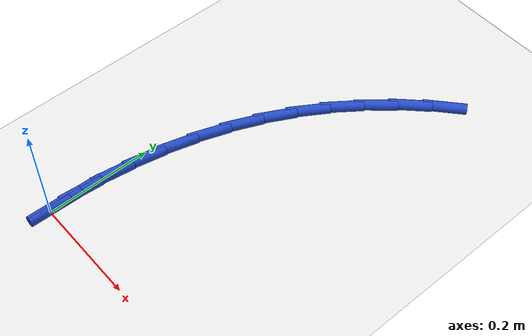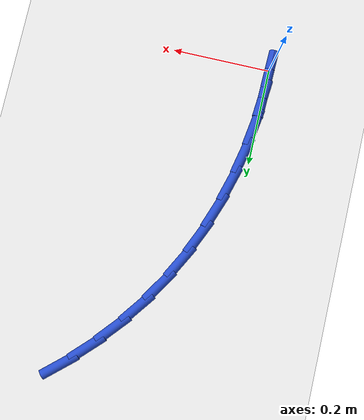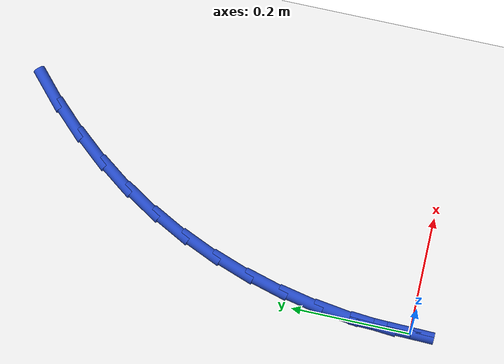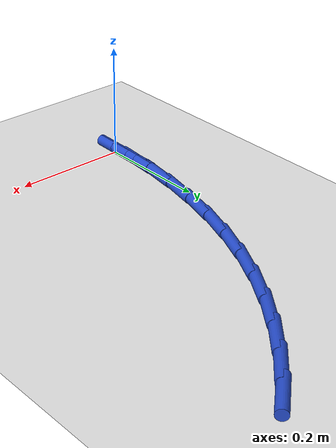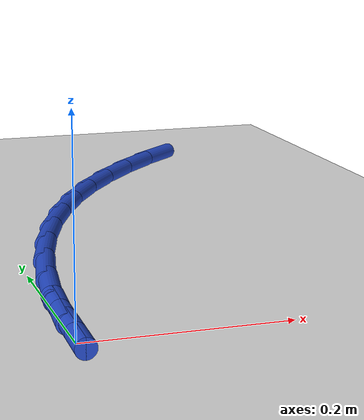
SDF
<sdf version="1.6">
 <world name="default">
  <model name="ground_plane">
   <static>1</static>
   <link name="link">
    <collision name="collision">
     <geometry><plane><normal>0 0 1</normal><size>100 100</size></plane></geometry>
     <surface><friction><ode><mu>100</mu><mu2>50</mu2></ode></friction></surface>
    </collision>
    <visual name="visual">
     <cast_shadows>0</cast_shadows>
     <geometry><plane><normal>0 0 1</normal><size>100 100</size></plane></geometry>
     <material>
      <script><uri>file://media/materials/scripts/gazebo.material</uri><name>Gazebo/WhiteGlow</name></script>
     </material>
    </visual>
   </link>
  </model>
  <model name="line">
   <link name="link_0">
    <pose>-3.9898639947466563e-17 -8.326672684688674e-17 0.01 0 1.57 1.546641164605329</pose>
    <collision name="collision">
     <geometry><cylinder><radius>0.01</radius><length>0.08</length></cylinder></geometry>
    </collision>
    <visual name="visual">
     <material>
      <script><name>Gazebo/Blue</name><uri>file://media/materials/scripts/gazebo.material</uri></script>
     </material>
     <geometry><cylinder><radius>0.01</radius><length>0.08</length></cylinder></geometry>
    </visual>
   </link>
   <link name="link_1">
    <pose>0.0015157560955368265 0.06273860932221663 0.01 0 1.57 1.4859823831083023</pose>
    <collision name="collision">
     <geometry><cylinder><radius>0.01</radius><length>0.08</length></cylinder></geometry>
    </collision>
    <visual name="visual">
     <material>
      <script><name>Gazebo/Blue</name><uri>file://media/materials/scripts/gazebo.material</uri></script>
     </material>
     <geometry><cylinder><radius>0.01</radius><length>0.08</length></cylinder></geometry>
    </visual>
   </link>
   <link name="link_2">
    <pose>0.006835448757592994 0.12531005385260574 0.01 0 1.57 1.4240579217303015</pose>
    <collision name="collision">
     <geometry><cylinder><radius>0.01</radius><length>0.08</length></cylinder></geometry>
    </collision>
    <visual name="visual">
     <material>
      <script><name>Gazebo/Blue</name><uri>file://media/materials/scripts/gazebo.material</uri></script>
     </material>
     <geometry><cylinder><radius>0.01</radius><length>0.08</length></cylinder></geometry>
    </visual>
   </link>
   <link name="link_3">
    <pose>0.016011991596027744 0.18739730701361879 0.01 0 1.57 1.3604272098657384</pose>
    <collision name="collision">
     <geometry><cylinder><radius>0.01</radius><length>0.08</length></cylinder></geometry>
    </collision>
    <visual name="visual">
     <material>
      <script><name>Gazebo/Blue</name><uri>file://media/materials/scripts/gazebo.material</uri></script>
     </material>
     <geometry><cylinder><radius>0.01</radius><length>0.08</length></cylinder></geometry>
    </visual>
   </link>
   <link name="link_4">
    <pose>0.029098298220700307 0.248683342227707 0.01 0 1.57 1.2946771018252297</pose>
    <collision name="collision">
     <geometry><cylinder><radius>0.01</radius><length>0.08</length></cylinder></geometry>
    </collision>
    <visual name="visual">
     <material>
      <script><name>Gazebo/Blue</name><uri>file://media/materials/scripts/gazebo.material</uri></script>
     </material>
     <geometry><cylinder><radius>0.01</radius><length>0.08</length></cylinder></geometry>
    </visual>
   </link>
   <link name="link_5">
    <pose>0.046147282241469974 0.308851132917322 0.01 0 1.57 1.2264340067500072</pose>
    <collision name="collision">
     <geometry><cylinder><radius>0.01</radius><length>0.08</length></cylinder></geometry>
    </collision>
    <visual name="visual">
     <material>
      <script><name>Gazebo/Blue</name><uri>file://media/materials/scripts/gazebo.material</uri></script>
     </material>
     <geometry><cylinder><radius>0.01</radius><length>0.08</length></cylinder></geometry>
    </visual>
   </link>
   <link name="link_6">
    <pose>0.067211857268196 0.36758365250491526 0.01 0 1.57 1.1553814114016199</pose>
    <collision name="collision">
     <geometry><cylinder><radius>0.01</radius><length>0.08</length></cylinder></geometry>
    </collision>
    <visual name="visual">
     <material>
      <script><name>Gazebo/Blue</name><uri>file://media/materials/scripts/gazebo.material</uri></script>
     </material>
     <geometry><cylinder><radius>0.01</radius><length>0.08</length></cylinder></geometry>
    </visual>
   </link>
   <link name="link_7">
    <pose>0.09234493691073764 0.424563874412938 0.01 0 1.57 1.0812830899789785</pose>
    <collision name="collision">
     <geometry><cylinder><radius>0.01</radius><length>0.08</length></cylinder></geometry>
    </collision>
    <visual name="visual">
     <material>
      <script><name>Gazebo/Blue</name><uri>file://media/materials/scripts/gazebo.material</uri></script>
     </material>
     <geometry><cylinder><radius>0.01</radius><length>0.08</length></cylinder></geometry>
    </visual>
   </link>
   <link name="link_8">
    <pose>0.12159943477895414 0.4794747720638419 0.01 0 1.57 1.0043081759333834</pose>
    <collision name="collision">
     <geometry><cylinder><radius>0.01</radius><length>0.08</length></cylinder></geometry>
    </collision>
    <visual name="visual">
     <material>
      <script><name>Gazebo/Blue</name><uri>file://media/materials/scripts/gazebo.material</uri></script>
     </material>
     <geometry><cylinder><radius>0.01</radius><length>0.08</length></cylinder></geometry>
    </visual>
   </link>
   <link name="link_9">
    <pose>0.15501196497072361 0.5320081319355409 0.01 0 1.57 0.9286007330727324</pose>
    <collision name="collision">
     <geometry><cylinder><radius>0.01</radius><length>0.08</length></cylinder></geometry>
    </collision>
    <visual name="visual">
     <material>
      <script><name>Gazebo/Blue</name><uri>file://media/materials/scripts/gazebo.material</uri></script>
     </material>
     <geometry><cylinder><radius>0.01</radius><length>0.08</length></cylinder></geometry>
    </visual>
   </link>
   <link name="link_10">
    <pose>0.19238911529198596 0.581980114442487 0.01 0 1.57 0.8570861892014767</pose>
    <collision name="collision">
     <geometry><cylinder><radius>0.01</radius><length>0.08</length></cylinder></geometry>
    </collision>
    <visual name="visual">
     <material>
      <script><name>Gazebo/Blue</name><uri>file://media/materials/scripts/gazebo.material</uri></script>
     </material>
     <geometry><cylinder><radius>0.01</radius><length>0.08</length></cylinder></geometry>
    </visual>
   </link>
   <link name="link_11">
    <pose>0.23336723145306768 0.6292989289532644 0.01 0 1.57 0.7895045114746403</pose>
    <collision name="collision">
     <geometry><cylinder><radius>0.01</radius><length>0.08</length></cylinder></geometry>
    </collision>
    <visual name="visual">
     <material>
      <script><name>Gazebo/Blue</name><uri>file://media/materials/scripts/gazebo.material</uri></script>
     </material>
     <geometry><cylinder><radius>0.01</radius><length>0.08</length></cylinder></geometry>
    </visual>
   </link>
   <link name="link_12">
    <pose>0.27757865705143947 0.6738749487566167 0.01 0 1.57 0.7254224471951165</pose>
    <collision name="collision">
     <geometry><cylinder><radius>0.01</radius><length>0.08</length></cylinder></geometry>
    </collision>
    <visual name="visual">
     <material>
      <script><name>Gazebo/Blue</name><uri>file://media/materials/scripts/gazebo.material</uri></script>
     </material>
     <geometry><cylinder><radius>0.01</radius><length>0.08</length></cylinder></geometry>
    </visual>
   </link>
   <link name="link_120">
    <pose>-5.724587470723463e-17 -8.326672684688674e-17 0.01 0 1.57 1.5467619632328427</pose>
    <collision name="collision">
     <geometry><cylinder><radius>0.01</radius><length>0.08</length></cylinder></geometry>
    </collision>
    <visual name="visual">
     <material>
      <script><name>Gazebo/Blue</name><uri>file://media/materials/scripts/gazebo.material</uri></script>
     </material>
     <geometry><cylinder><radius>0.01</radius><length>0.08</length></cylinder></geometry>
    </visual>
   </link>
   <link name="link_121">
    <pose>0.0015086025920953913 0.0627564817877222 0.01 0 1.57 1.5467619632328429</pose>
    <collision name="collision">
     <geometry><cylinder><radius>0.01</radius><length>0.08</length></cylinder></geometry>
    </collision>
    <visual name="visual">
     <material>
      <script><name>Gazebo/Blue</name><uri>file://media/materials/scripts/gazebo.material</uri></script>
     </material>
     <geometry><cylinder><radius>0.01</radius><length>0.08</length></cylinder></geometry>
    </visual>
   </link>
  </model>
 </world>
</sdf>
